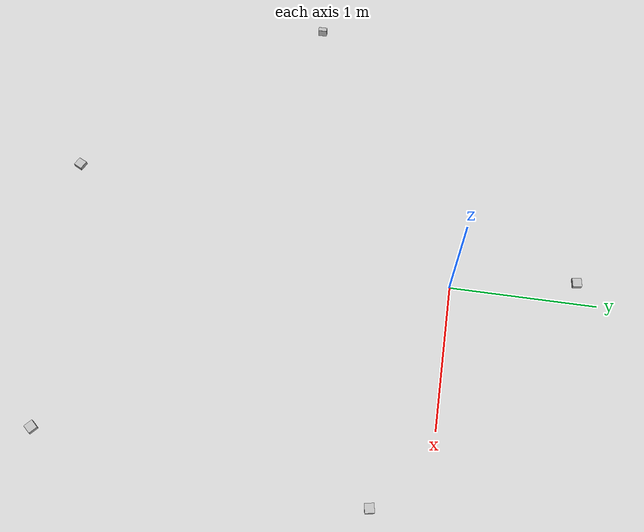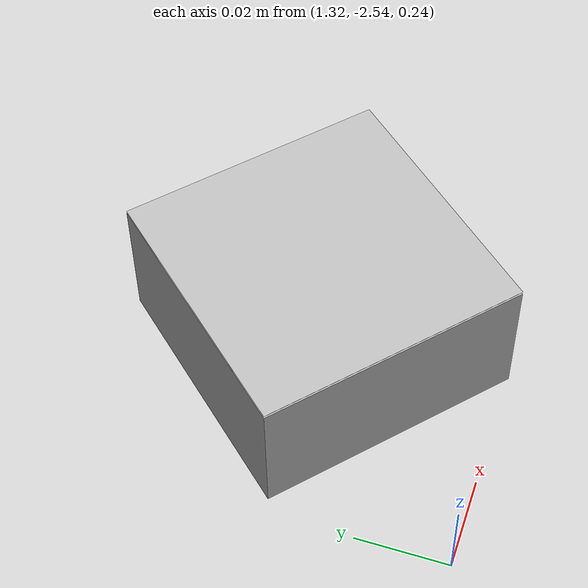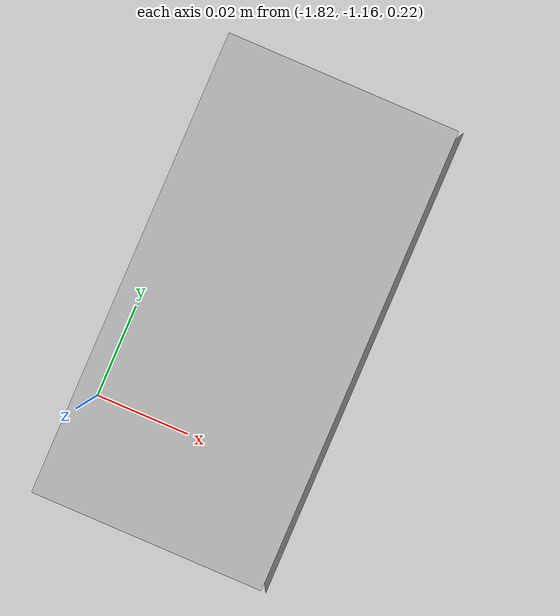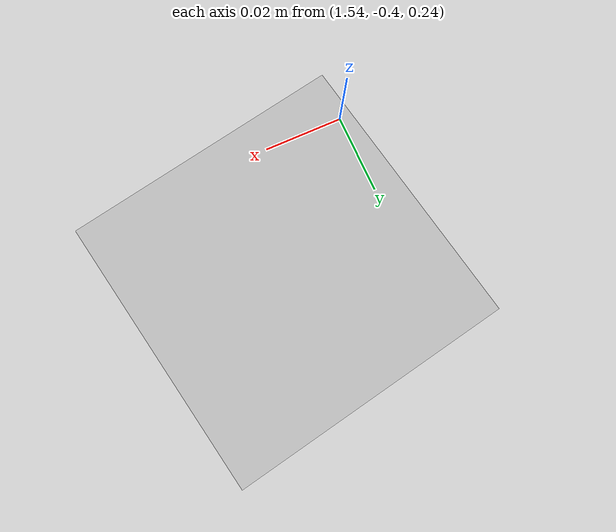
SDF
<sdf version='1.10'>
  <world name='empty'>
    <physics name='1ms' type='ignored'>
      <max_step_size>0.001</max_step_size>
      <real_time_factor>1</real_time_factor>
      <real_time_update_rate>1000</real_time_update_rate>
    </physics>
    <plugin name='gz::sim::systems::Physics' filename='gz-sim-physics-system'/>
    <plugin name='gz::sim::systems::UserCommands' filename='gz-sim-user-commands-system'/>
    <plugin name='gz::sim::systems::SceneBroadcaster' filename='gz-sim-scene-broadcaster-system'/>
    <plugin name='gz::sim::systems::Contact' filename='gz-sim-contact-system'/>
    <plugin name='gz::sim::systems::Sensors' filename='gz-sim-sensors-system'/>
    <plugin name='gz::sim::systems::Imu' filename='gz-sim-imu-system'/>
    <plugin name='gz::sim::systems::NavSat' filename='gz-sim-navsat-system'/>
    <spherical_coordinates>
      <surface_model>EARTH_WGS84</surface_model>
      <world_frame_orientation>ENU</world_frame_orientation>
      <latitude_deg>44.403373000000002</latitude_deg>
      <longitude_deg>8.9481067999999997</longitude_deg>
      <elevation>0</elevation>
      <heading_deg>0</heading_deg>
    </spherical_coordinates>
    <gravity>0 0 -9.8000000000000007</gravity>
    <magnetic_field>5.5644999999999998e-06 2.2875799999999999e-05 -4.2388400000000002e-05</magnetic_field>
    <atmosphere type='adiabatic'/>
    <scene>
      <ambient>0.400000006 0.400000006 0.400000006 1</ambient>
      <background>0.699999988 0.699999988 0.699999988 1</background>
      <shadows>true</shadows>
    </scene>
    <model name='ground_plane'>
      <static>true</static>
      <link name='link'>
        <collision name='collision'>
          <geometry>
            <plane>
              <normal>0 0 1</normal>
              <size>100 100</size>
            </plane>
          </geometry>
          <surface>
            <friction>
              <ode>
                <mu>50</mu>
              </ode>
            </friction>
            <bounce/>
            <contact/>
          </surface>
        </collision>
        <visual name='visual'>
          <geometry>
            <plane>
              <normal>0 0 1</normal>
              <size>100 100</size>
            </plane>
          </geometry>
          <material>
            <ambient>0.800000012 0.800000012 0.800000012 1</ambient>
            <diffuse>0.800000012 0.800000012 0.800000012 1</diffuse>
            <specular>0.800000012 0.800000012 0.800000012 1</specular>
          </material>
        </visual>
        <pose>0 0 0 0 0 0</pose>
        <inertial>
          <pose>0 0 0 0 0 0</pose>
          <mass>1</mass>
          <inertia>
            <ixx>1</ixx>
            <ixy>0</ixy>
            <ixz>0</ixz>
            <iyy>1</iyy>
            <iyz>0</iyz>
            <izz>1</izz>
          </inertia>
        </inertial>
        <enable_wind>false</enable_wind>
      </link>
      <pose>0 0 0 0 0 0</pose>
      <self_collide>false</self_collide>
    </model>
    <include>
      <uri>file:////home/utente/gazebo_models/aruco_box</uri>
      <name>aruco_box</name>
      <pose>1.3683619499206539 -2.4974465370178218 0.24999999995712521 -1.8732968143136815e-21 -1.0442071421022159e-21 0.83826299767070878</pose>
    </include>
    <include>
      <uri>file:////home/utente/gazebo_models/aruco_box</uri>
      <name>aruco_box_1</name>
      <pose>1.5704368352890015 -0.36540091037750233 0.24999999995712521 -3.535673711502877e-21 -6.6691817024743559e-22 0.18123703290442159</pose>
    </include>
    <include>
      <uri>file:////home/utente/gazebo_models/aruco_box</uri>
      <name>aruco_box_2</name>
      <pose>-0.050301603972911835 0.80641657114028931 0.24999901156305956 1.4039165307829767e-21 -2.3878695121514751e-21 0.13834603433541748</pose>
    </include>
    <include>
      <uri>file:////home/utente/gazebo_models/aruco_box</uri>
      <name>aruco_box_3</name>
      <pose>-0.47107705473899819 -2.6397693157196045 0.24999924061797243 -3.8472375669660293e-19 3.6754549826289256e-19 1.1110300150247343</pose>
    </include>
    <include>
      <uri>file:////home/utente/gazebo_models/aruco_box</uri>
      <name>aruco_box_4</name>
      <pose>-1.7999462633996781 -1.1327949762359115 0.24999911791273036 1.5707968633681397 -1.0574319198042303e-12 1.5708000222828804</pose>
    </include>

    <light name='sun' type='directional'>
      <pose>0 0 10 0 0 0</pose>
      <cast_shadows>true</cast_shadows>
      <intensity>1</intensity>
      <direction>-0.5 0.10000000000000001 -0.90000000000000002</direction>
      <diffuse>0.800000012 0.800000012 0.800000012 1</diffuse>
      <specular>0.200000003 0.200000003 0.200000003 1</specular>
      <attenuation>
        <range>1000</range>
        <linear>0.01</linear>
        <constant>0.90000000000000002</constant>
        <quadratic>0.001</quadratic>
      </attenuation>
      <spot>
        <inner_angle>0</inner_angle>
        <outer_angle>0</outer_angle>
        <falloff>0</falloff>
      </spot>
    </light>
  </world>
</sdf>

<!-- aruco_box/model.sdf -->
<sdf version="1.6">
  <model name="aruco_box">
    <static>false</static>

    <link name="link">
      <inertial>
        <mass>0.05</mass>
        <inertia>
          <ixx>1e-5</ixx><iyy>1e-5</iyy><izz>1e-5</izz>
          <ixy>0</ixy><ixz>0</ixz><iyz>0</iyz>
        </inertia>
      </inertial>

      <collision name="box_col">
        <geometry>
          <box><size>0.06 0.06 0.03</size></box>
        </geometry>
      </collision>

      <visual name="box_vis">
        <geometry>
          <box><size>0.06 0.06 0.03</size></box>
        </geometry>
        <material>
          <ambient>0.7 0.7 0.7 1</ambient>
          <diffuse>0.7 0.7 0.7 1</diffuse>
        </material>
      </visual>

      <!-- Top marker plane -->
      <visual name="marker_plane">
        <!-- box half height = 0.015, lift slightly to avoid z-fighting -->
        <pose>0 0 0.0156 0 0 0</pose>
        <geometry>
          <plane>
            <normal>0 0 1</normal>
            <size>0.06 0.06</size>
          </plane>
        </geometry>
        <material>
          <script>
            <uri>model://aruco_box/materials/scripts</uri>
            <uri>model://aruco_box/materials/textures</uri>
            <name>ArucoBox/Marker</name>
          </script>
        </material>
      </visual>

    </link>
  </model>
</sdf>
